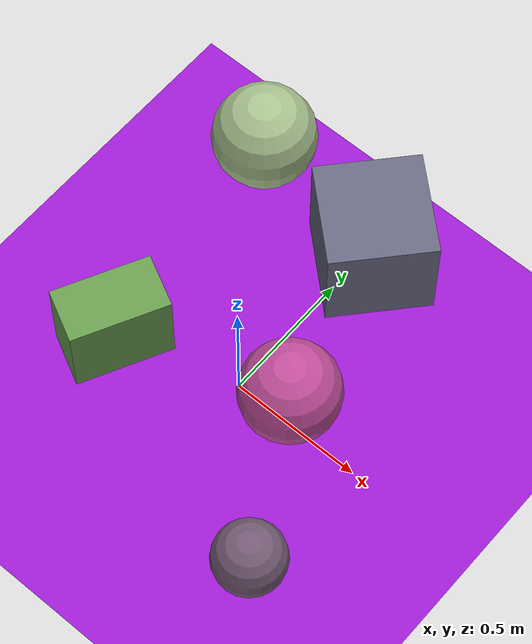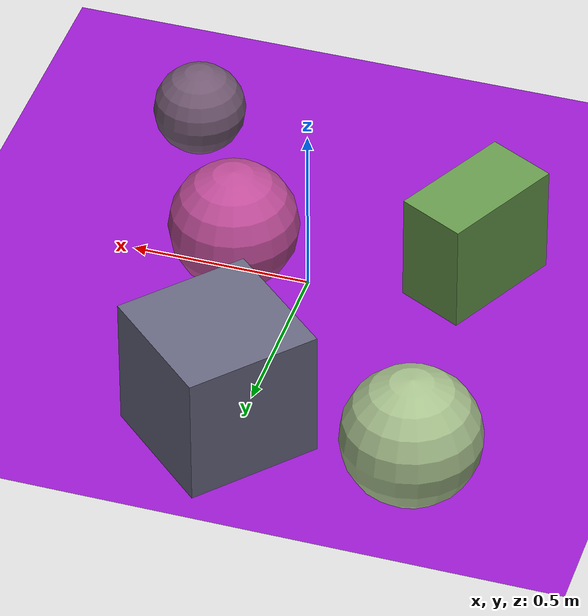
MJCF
<mujoco>
   <asset>
<texture type="skybox" builtin="gradient" rgb1="1.0 0.2 0.4" rgb2="0.5 0.8 0.3" width="256" height="256"/>
<texture name="checker_0" builtin="checker" rgb1="0.6 0.9 1.0" rgb2="0.7 0.6 0.1" width="200" height="200"/>
<texture name="gradient_1" builtin="gradient" rgb1="0.8 0.4 0.2" rgb2="0.1 0.3 0.7" width="200" height="200"/>
<texture name="flat_2" builtin="flat" rgb1="0.4 0.4 0.5" rgb2="0.4 0.4 0.5"  width="200" height="200"/>
<texture name="gradient_3" builtin="gradient" rgb1="0.6 0.3 0.5" rgb2="0.9 0.3 0.7" width="200" height="200"/>
<texture name="flat_4" builtin="flat" rgb1="0.4 0.6 0.3" rgb2="0.4 0.6 0.3"  width="200" height="200"/><material name="checker_0_mat" reflectance="0" texrepeat="10 10" texture="checker_0" texuniform="false" />
<material name="gradient_1_mat" reflectance="0" texture="gradient_1" texuniform="true"/>
<material name="flat_2_mat" reflectance="0" texture="flat_2" texuniform="true"/>
<material name="gradient_3_mat" reflectance="0" texture="gradient_3" texuniform="true"/>
<material name="flat_4_mat" reflectance="0" texture="flat_4" texuniform="true"/>
   </asset>

   <worldbody>
      <light diffuse=".9 .9 .9" pos="0 0 3" dir="0 0 -1"/>
     <geom type="plane" size="1 1 0.1" rgba="0.6 0.1 0.8 1"/>
<geom type="sphere" pos="-0.51 0.73 0.19" size="0.19 0.19 0.19" material="checker_0_mat" euler="0 0 76" />
<geom type="sphere" pos="0.47 -0.49 0.13" size="0.13 0.13 0.13" material="gradient_1_mat" euler="0 0 75" />
<geom type="box" pos="0.04 0.66 0.19" size="0.19 0.19 0.19" material="flat_2_mat" euler="0 0 48" />
<geom type="sphere" pos="0.2 0.03 0.18" size="0.18 0.18 0.18" material="gradient_3_mat" euler="0 0 54" />
<geom type="box" pos="-0.43 -0.15 0.16" size="0.18 0.1 0.16" material="flat_4_mat" euler="0 0 63" /><camera euler="60 0 180" fovy="60" name="camera1" pos="-0.2 -1.5 1"></camera>   </worldbody>
</mujoco>
